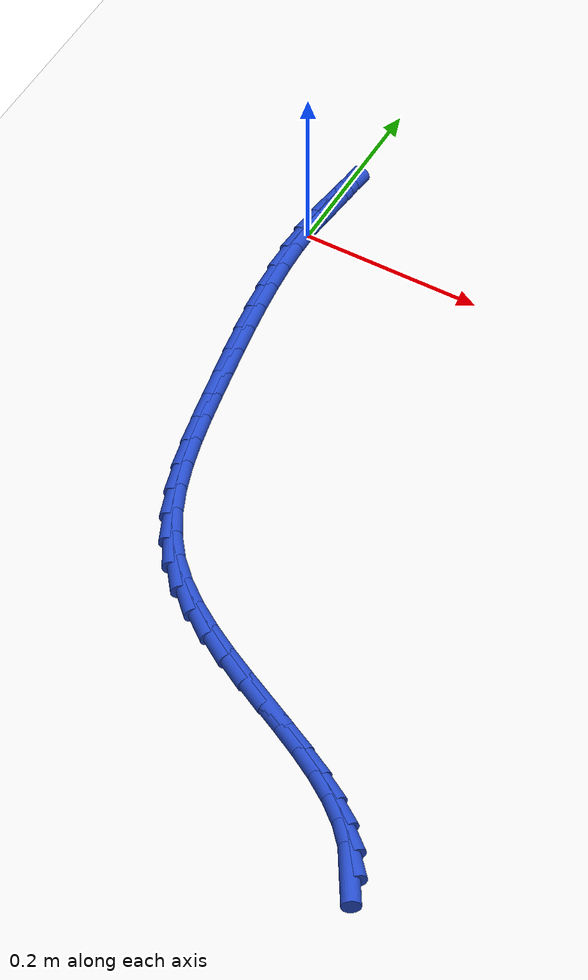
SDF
<sdf version="1.6">
 <world name="default">
  <model name="ground_plane">
   <static>1</static>
   <link name="link">
    <collision name="collision">
     <geometry><plane><normal>0 0 1</normal><size>100 100</size></plane></geometry>
     <surface><friction><ode><mu>100</mu><mu2>50</mu2></ode></friction></surface>
    </collision>
    <visual name="visual">
     <cast_shadows>0</cast_shadows>
     <geometry><plane><normal>0 0 1</normal><size>100 100</size></plane></geometry>
     <material>
      <script><uri>file://media/materials/scripts/gazebo.material</uri><name>Gazebo/WhiteGlow</name></script>
     </material>
    </visual>
   </link>
  </model>
  <model name="line">
   <link name="link_0">
    <pose>-4.336808689942018e-18 2.7755575615628914e-17 0.01 0 1.57 1.5202288980639533</pose>
    <collision name="collision">
     <geometry><cylinder><radius>0.01</radius><length>0.08</length></cylinder></geometry>
    </collision>
    <visual name="visual">
     <material>
      <script><name>Gazebo/Blue</name><uri>file://media/materials/scripts/gazebo.material</uri></script>
     </material>
     <geometry><cylinder><radius>0.01</radius><length>0.08</length></cylinder></geometry>
    </visual>
   </link>
   <link name="link_1">
    <pose>0.0015129040999605175 0.029893043540428432 0.01 0 1.57 1.4756453663990243</pose>
    <collision name="collision">
     <geometry><cylinder><radius>0.01</radius><length>0.08</length></cylinder></geometry>
    </collision>
    <visual name="visual">
     <material>
      <script><name>Gazebo/Blue</name><uri>file://media/materials/scripts/gazebo.material</uri></script>
     </material>
     <geometry><cylinder><radius>0.01</radius><length>0.08</length></cylinder></geometry>
    </visual>
   </link>
   <link name="link_2">
    <pose>0.004360388436772055 0.05972864063501424 0.01 0 1.57 1.444542633726316</pose>
    <collision name="collision">
     <geometry><cylinder><radius>0.01</radius><length>0.08</length></cylinder></geometry>
    </collision>
    <visual name="visual">
     <material>
      <script><name>Gazebo/Blue</name><uri>file://media/materials/scripts/gazebo.material</uri></script>
     </material>
     <geometry><cylinder><radius>0.01</radius><length>0.08</length></cylinder></geometry>
    </visual>
   </link>
   <link name="link_242">
    <pose>0.4368107748568534 -0.6849704276139487 0.01 0 1.57 -1.0157216451209174</pose>
    <collision name="collision">
     <geometry><cylinder><radius>0.01</radius><length>0.08</length></cylinder></geometry>
    </collision>
    <visual name="visual">
     <material>
      <script><name>Gazebo/Blue</name><uri>file://media/materials/scripts/gazebo.material</uri></script>
     </material>
     <geometry><cylinder><radius>0.01</radius><length>0.08</length></cylinder></geometry>
    </visual>
   </link>
   <link name="link_243">
    <pose>0.42248628409734845 -0.6618704829192437 0.01 0 1.57 -0.8424439173077498</pose>
    <collision name="collision">
     <geometry><cylinder><radius>0.01</radius><length>0.08</length></cylinder></geometry>
    </collision>
    <visual name="visual">
     <material>
      <script><name>Gazebo/Blue</name><uri>file://media/materials/scripts/gazebo.material</uri></script>
     </material>
     <geometry><cylinder><radius>0.01</radius><length>0.08</length></cylinder></geometry>
    </visual>
   </link>
   <link name="link_244">
    <pose>0.4039630930926002 -0.6411035210901457 0.01 0 1.57 -0.706214712740511</pose>
    <collision name="collision">
     <geometry><cylinder><radius>0.01</radius><length>0.08</length></cylinder></geometry>
    </collision>
    <visual name="visual">
     <material>
      <script><name>Gazebo/Blue</name><uri>file://media/materials/scripts/gazebo.material</uri></script>
     </material>
     <geometry><cylinder><radius>0.01</radius><length>0.08</length></cylinder></geometry>
    </visual>
   </link>
   <link name="link_245">
    <pose>0.3818821167043661 -0.6222691512659725 0.01 0 1.57 -0.6057267383747278</pose>
    <collision name="collision">
     <geometry><cylinder><radius>0.01</radius><length>0.08</length></cylinder></geometry>
    </collision>
    <visual name="visual">
     <material>
      <script><name>Gazebo/Blue</name><uri>file://media/materials/scripts/gazebo.material</uri></script>
     </material>
     <geometry><cylinder><radius>0.01</radius><length>0.08</length></cylinder></geometry>
    </visual>
   </link>
   <link name="link_246">
    <pose>0.3568934680409743 -0.6049625862503623 0.01 0 1.57 -0.5359770627549706</pose>
    <collision name="collision">
     <geometry><cylinder><radius>0.01</radius><length>0.08</length></cylinder></geometry>
    </collision>
    <visual name="visual">
     <material>
      <script><name>Gazebo/Blue</name><uri>file://media/materials/scripts/gazebo.material</uri></script>
     </material>
     <geometry><cylinder><radius>0.01</radius><length>0.08</length></cylinder></geometry>
    </visual>
   </link>
   <link name="link_247">
    <pose>0.329647260210753 -0.5887790388469532 0.01 0 1.57 -0.49202464976737725</pose>
    <collision name="collision">
     <geometry><cylinder><radius>0.01</radius><length>0.08</length></cylinder></geometry>
    </collision>
    <visual name="visual">
     <material>
      <script><name>Gazebo/Blue</name><uri>file://media/materials/scripts/gazebo.material</uri></script>
     </material>
     <geometry><cylinder><radius>0.01</radius><length>0.08</length></cylinder></geometry>
    </visual>
   </link>
   <link name="link_248">
    <pose>0.3007936063220327 -0.5733137218593847 0.01 0 1.57 -0.47023752754926745</pose>
    <collision name="collision">
     <geometry><cylinder><radius>0.01</radius><length>0.08</length></cylinder></geometry>
    </collision>
    <visual name="visual">
     <material>
      <script><name>Gazebo/Blue</name><uri>file://media/materials/scripts/gazebo.material</uri></script>
     </material>
     <geometry><cylinder><radius>0.01</radius><length>0.08</length></cylinder></geometry>
    </visual>
   </link>
   <link name="link_249">
    <pose>0.2709826194831407 -0.5581618480912947 0.01 0 1.57 -0.4685260892289112</pose>
    <collision name="collision">
     <geometry><cylinder><radius>0.01</radius><length>0.08</length></cylinder></geometry>
    </collision>
    <visual name="visual">
     <material>
      <script><name>Gazebo/Blue</name><uri>file://media/materials/scripts/gazebo.material</uri></script>
     </material>
     <geometry><cylinder><radius>0.01</radius><length>0.08</length></cylinder></geometry>
    </visual>
   </link>
   <link name="link_250">
    <pose>0.24086441280240764 -0.5429186303463226 0.01 0 1.57 -0.4862680689382693</pose>
    <collision name="collision">
     <geometry><cylinder><radius>0.01</radius><length>0.08</length></cylinder></geometry>
    </collision>
    <visual name="visual">
     <material>
      <script><name>Gazebo/Blue</name><uri>file://media/materials/scripts/gazebo.material</uri></script>
     </material>
     <geometry><cylinder><radius>0.01</radius><length>0.08</length></cylinder></geometry>
    </visual>
   </link>
   <link name="link_251">
    <pose>0.2110890993881607 -0.527179281428106 0.01 0 1.57 -0.5241925454197859</pose>
    <collision name="collision">
     <geometry><cylinder><radius>0.01</radius><length>0.08</length></cylinder></geometry>
    </collision>
    <visual name="visual">
     <material>
      <script><name>Gazebo/Blue</name><uri>file://media/materials/scripts/gazebo.material</uri></script>
     </material>
     <geometry><cylinder><radius>0.01</radius><length>0.08</length></cylinder></geometry>
    </visual>
   </link>
   <link name="link_252">
    <pose>0.18230679234873054 -0.5105390141402844 0.01 0 1.57 -0.5842479677337066</pose>
    <collision name="collision">
     <geometry><cylinder><radius>0.01</radius><length>0.08</length></cylinder></geometry>
    </collision>
    <visual name="visual">
     <material>
      <script><name>Gazebo/Blue</name><uri>file://media/materials/scripts/gazebo.material</uri></script>
     </material>
     <geometry><cylinder><radius>0.01</radius><length>0.08</length></cylinder></geometry>
    </visual>
   </link>
   <link name="link_253">
    <pose>0.15516760479244454 -0.49259304128649584 0.01 0 1.57 -0.6693110662384946</pose>
    <collision name="collision">
     <geometry><cylinder><radius>0.01</radius><length>0.08</length></cylinder></geometry>
    </collision>
    <visual name="visual">
     <material>
      <script><name>Gazebo/Blue</name><uri>file://media/materials/scripts/gazebo.material</uri></script>
     </material>
     <geometry><cylinder><radius>0.01</radius><length>0.08</length></cylinder></geometry>
    </visual>
   </link>
   <link name="link_254">
    <pose>0.13032164982763314 -0.4729365756703797 0.01 0 1.57 -0.7824018215156151</pose>
    <collision name="collision">
     <geometry><cylinder><radius>0.01</radius><length>0.08</length></cylinder></geometry>
    </collision>
    <visual name="visual">
     <material>
      <script><name>Gazebo/Blue</name><uri>file://media/materials/scripts/gazebo.material</uri></script>
     </material>
     <geometry><cylinder><radius>0.01</radius><length>0.08</length></cylinder></geometry>
    </visual>
   </link>
   <link name="link_255">
    <pose>0.10841904056262389 -0.4511648300955735 0.01 0 1.57 -0.9194816053284308</pose>
    <collision name="collision">
     <geometry><cylinder><radius>0.01</radius><length>0.08</length></cylinder></geometry>
    </collision>
    <visual name="visual">
     <material>
      <script><name>Gazebo/Blue</name><uri>file://media/materials/scripts/gazebo.material</uri></script>
     </material>
     <geometry><cylinder><radius>0.01</radius><length>0.08</length></cylinder></geometry>
    </visual>
   </link>
   <link name="link_256">
    <pose>0.08997354830995857 -0.42696707031764647 0.01 0 1.57 -1.048254101800404</pose>
    <collision name="collision">
     <geometry><cylinder><radius>0.01</radius><length>0.08</length></cylinder></geometry>
    </collision>
    <visual name="visual">
     <material>
      <script><name>Gazebo/Blue</name><uri>file://media/materials/scripts/gazebo.material</uri></script>
     </material>
     <geometry><cylinder><radius>0.01</radius><length>0.08</length></cylinder></geometry>
    </visual>
   </link>
   <link name="link_257">
    <pose>0.07475599830736215 -0.40054507016833174 0.01 0 1.57 -1.155357080134366</pose>
    <collision name="collision">
     <geometry><cylinder><radius>0.01</radius><length>0.08</length></cylinder></geometry>
    </collision>
    <visual name="visual">
     <material>
      <script><name>Gazebo/Blue</name><uri>file://media/materials/scripts/gazebo.material</uri></script>
     </material>
     <geometry><cylinder><radius>0.01</radius><length>0.08</length></cylinder></geometry>
    </visual>
   </link>
   <link name="link_258">
    <pose>0.062285392929873715 -0.37227431898209534 0.01 0 1.57 -1.2402895514392853</pose>
    <collision name="collision">
     <geometry><cylinder><radius>0.01</radius><length>0.08</length></cylinder></geometry>
    </collision>
    <visual name="visual">
     <material>
      <script><name>Gazebo/Blue</name><uri>file://media/materials/scripts/gazebo.material</uri></script>
     </material>
     <geometry><cylinder><radius>0.01</radius><length>0.08</length></cylinder></geometry>
    </visual>
   </link>
   <link name="link_259">
    <pose>0.052080531886818965 -0.3425304458987282 0.01 0 1.57 -1.3042716161574492</pose>
    <collision name="collision">
     <geometry><cylinder><radius>0.01</radius><length>0.08</length></cylinder></geometry>
    </collision>
    <visual name="visual">
     <material>
      <script><name>Gazebo/Blue</name><uri>file://media/materials/scripts/gazebo.material</uri></script>
     </material>
     <geometry><cylinder><radius>0.01</radius><length>0.08</length></cylinder></geometry>
    </visual>
   </link>
   <link name="link_260">
    <pose>0.04366021488752209 -0.3116890800580179 0.01 0 1.57 -1.3490221580902533</pose>
    <collision name="collision">
     <geometry><cylinder><radius>0.01</radius><length>0.08</length></cylinder></geometry>
    </collision>
    <visual name="visual">
     <material>
      <script><name>Gazebo/Blue</name><uri>file://media/materials/scripts/gazebo.material</uri></script>
     </material>
     <geometry><cylinder><radius>0.01</radius><length>0.08</length></cylinder></geometry>
    </visual>
   </link>
   <link name="link_261">
    <pose>0.03654324164130849 -0.28012585059975503 0.01 0 1.57 -1.376025636549275</pose>
    <collision name="collision">
     <geometry><cylinder><radius>0.01</radius><length>0.08</length></cylinder></geometry>
    </collision>
    <visual name="visual">
     <material>
      <script><name>Gazebo/Blue</name><uri>file://media/materials/scripts/gazebo.material</uri></script>
     </material>
     <geometry><cylinder><radius>0.01</radius><length>0.08</length></cylinder></geometry>
    </visual>
   </link>
   <link name="link_262">
    <pose>0.0302484118575026 -0.2482163866637274 0.01 0 1.57 -1.3865158922171885</pose>
    <collision name="collision">
     <geometry><cylinder><radius>0.01</radius><length>0.08</length></cylinder></geometry>
    </collision>
    <visual name="visual">
     <material>
      <script><name>Gazebo/Blue</name><uri>file://media/materials/scripts/gazebo.material</uri></script>
     </material>
     <geometry><cylinder><radius>0.01</radius><length>0.08</length></cylinder></geometry>
    </visual>
   </link>
   <link name="link_263">
    <pose>0.02430507913816307 -0.21633072919142493 0.01 0 1.57 -1.3911347252850517</pose>
    <collision name="collision">
     <geometry><cylinder><radius>0.01</radius><length>0.08</length></cylinder></geometry>
    </collision>
    <visual name="visual">
     <material>
      <script><name>Gazebo/Blue</name><uri>file://media/materials/scripts/gazebo.material</uri></script>
     </material>
     <geometry><cylinder><radius>0.01</radius><length>0.08</length></cylinder></geometry>
    </visual>
   </link>
   <link name="link_264">
    <pose>0.018555452171949833 -0.18467326496168768 0.01 0 1.57 -1.4019211318418867</pose>
    <collision name="collision">
     <geometry><cylinder><radius>0.01</radius><length>0.08</length></cylinder></geometry>
    </collision>
    <visual name="visual">
     <material>
      <script><name>Gazebo/Blue</name><uri>file://media/materials/scripts/gazebo.material</uri></script>
     </material>
     <geometry><cylinder><radius>0.01</radius><length>0.08</length></cylinder></geometry>
    </visual>
   </link>
   <link name="link_265">
    <pose>0.013199353053300167 -0.15325902743349348 0.01 0 1.57 -1.419765594867198</pose>
    <collision name="collision">
     <geometry><cylinder><radius>0.01</radius><length>0.08</length></cylinder></geometry>
    </collision>
    <visual name="visual">
     <material>
      <script><name>Gazebo/Blue</name><uri>file://media/materials/scripts/gazebo.material</uri></script>
     </material>
     <geometry><cylinder><radius>0.01</radius><length>0.08</length></cylinder></geometry>
    </visual>
   </link>
   <link name="link_266">
    <pose>0.008456159634399394 -0.12209269545496476 0.01 0 1.57 -1.444954469117586</pose>
    <collision name="collision">
     <geometry><cylinder><radius>0.01</radius><length>0.08</length></cylinder></geometry>
    </collision>
    <visual name="visual">
     <material>
      <script><name>Gazebo/Blue</name><uri>file://media/materials/scripts/gazebo.material</uri></script>
     </material>
     <geometry><cylinder><radius>0.01</radius><length>0.08</length></cylinder></geometry>
    </visual>
   </link>
   <link name="link_267">
    <pose>0.004545249767433443 -0.09117894787422749 0.01 0 1.57 -1.4777980311029133</pose>
    <collision name="collision">
     <geometry><cylinder><radius>0.01</radius><length>0.08</length></cylinder></geometry>
    </collision>
    <visual name="visual">
     <material>
      <script><name>Gazebo/Blue</name><uri>file://media/materials/scripts/gazebo.material</uri></script>
     </material>
     <geometry><cylinder><radius>0.01</radius><length>0.08</length></cylinder></geometry>
    </visual>
   </link>
   <link name="link_268">
    <pose>0.0016860013045877928 -0.0605224635394049 0.01 0 1.57 -1.518590701122413</pose>
    <collision name="collision">
     <geometry><cylinder><radius>0.01</radius><length>0.08</length></cylinder></geometry>
    </collision>
    <visual name="visual">
     <material>
      <script><name>Gazebo/Blue</name><uri>file://media/materials/scripts/gazebo.material</uri></script>
     </material>
     <geometry><cylinder><radius>0.01</radius><length>0.08</length></cylinder></geometry>
    </visual>
   </link>
   <link name="link_269">
    <pose>9.779209804806292e-05 -0.0301279212986204 0.01 0 1.57 -1.5675504422335187</pose>
    <collision name="collision">
     <geometry><cylinder><radius>0.01</radius><length>0.08</length></cylinder></geometry>
    </collision>
    <visual name="visual">
     <material>
      <script><name>Gazebo/Blue</name><uri>file://media/materials/scripts/gazebo.material</uri></script>
     </material>
     <geometry><cylinder><radius>0.01</radius><length>0.08</length></cylinder></geometry>
    </visual>
   </link>
   <link name="link_270">
    <pose>-1.9081958235744878e-17 1.1102230246251565e-16 0.01 0 1.57 1.5168572290848288</pose>
    <collision name="collision">
     <geometry><cylinder><radius>0.01</radius><length>0.08</length></cylinder></geometry>
    </collision>
    <visual name="visual">
     <material>
      <script><name>Gazebo/Blue</name><uri>file://media/materials/scripts/gazebo.material</uri></script>
     </material>
     <geometry><cylinder><radius>0.01</radius><length>0.08</length></cylinder></geometry>
    </visual>
   </link>
   <link name="link_271">
    <pose>0.001612002862629195 0.02985662150833417 0.01 0 1.57 1.4516507303289814</pose>
    <collision name="collision">
     <geometry><cylinder><radius>0.01</radius><length>0.08</length></cylinder></geometry>
    </collision>
    <visual name="visual">
     <material>
      <script><name>Gazebo/Blue</name><uri>file://media/materials/scripts/gazebo.material</uri></script>
     </material>
     <geometry><cylinder><radius>0.01</radius><length>0.08</length></cylinder></geometry>
    </visual>
   </link>
   <link name="link_272">
    <pose>0.005153178538121384 0.059437264378256735 0.01 0 1.57 1.4843131294726442</pose>
    <collision name="collision">
     <geometry><cylinder><radius>0.01</radius><length>0.08</length></cylinder></geometry>
    </collision>
    <visual name="visual">
     <material>
      <script><name>Gazebo/Blue</name><uri>file://media/materials/scripts/gazebo.material</uri></script>
     </material>
     <geometry><cylinder><radius>0.01</radius><length>0.08</length></cylinder></geometry>
    </visual>
   </link>
  </model>
 </world>
</sdf>
